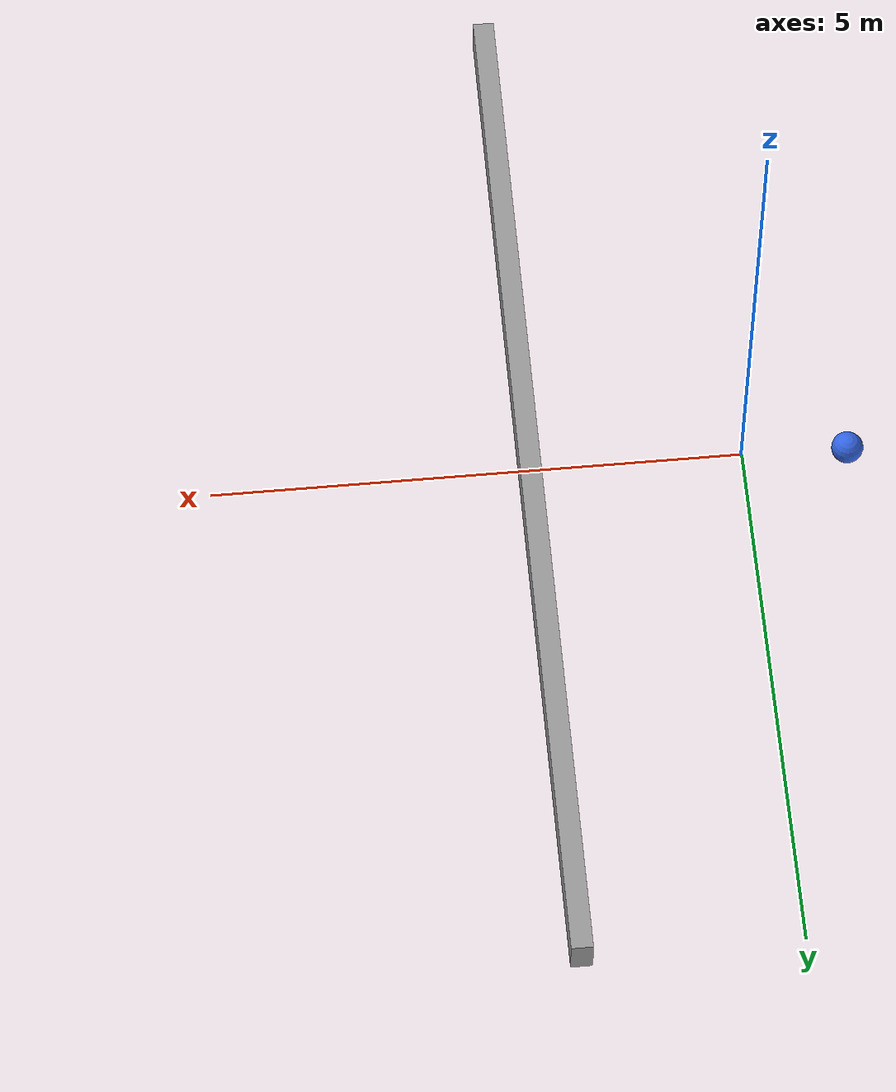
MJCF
<mujoco model="wall_contact">
  <option
    gravity="0 0 0"
    timestep="0.000125"
    cone="elliptic"
    solver="Newton"
    tolerance="1e-10"
    impratio="10"
    />

  <default>
    <geom friction="0.5 0.005 0.0001" condim="3"/>
  </default>

  <worldbody>
    <light name="top_light" pos="0 0 3" dir="0 0 -1" diffuse="1 1 1"/>

    <!-- Fixed wall: a vertical slab in the x-y plane, standing at x = 2 -->
    <body name="wall" pos="2 0 0">
      <geom name="wall_geom" type="box" size="0.1 5.0 0.2" rgba="0.6 0.6 0.6 1"/>
    </body>

    <!-- Movable object: free to translate in x and y -->
    <body name="object" pos="-1 0 0">
      <joint name="slide_x" type="slide" axis="1 0 0" pos="0 0 0"/>
      <joint name="slide_y" type="slide" axis="0 1 0" pos="0 0 0"/>
      <geom name="object_geom" type="sphere" size="0.15" rgba="0.2 0.4 0.9 1" mass="1.0"/>
    </body>
  </worldbody>

  <actuator>
    <motor name="force_x" joint="slide_x" gear="1"/>
    <motor name="force_y" joint="slide_y" gear="1"/>
  </actuator>
</mujoco>
